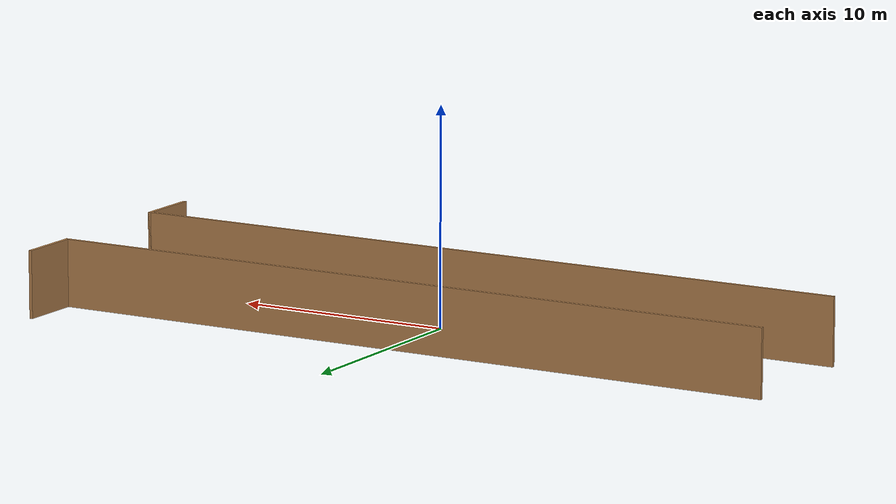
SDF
<?xml version='1.0'?>
<sdf version='1.6'>
  <model name='turtlebot3_square'>
    <pose frame=''>0 0 0 0 -0 0</pose>
    <link name='Wall_10'>
      <collision name='Wall_10_Collision'>
        <geometry>
          <box>
            <size>3 0.15 3.1</size>
          </box>
        </geometry>
        <pose frame=''>0 0 1.25 0 -0 0</pose>
      </collision>
      <visual name='Wall_10_Visual'>
        <pose frame=''>0 0 1.25 0 -0 0</pose>
        <geometry>
          <box>
            <size>3 0.15 3.1</size>
          </box>
        </geometry>
        <material>
          <script>
            <uri>file://media/materials/scripts/gazebo.material</uri>
            <name>Gazebo/Wood</name>
          </script>
          <ambient>1 1 1 1</ambient>
        </material>
      </visual>
      <pose frame=''>17.3988 4.84431 0 0 -0 1.5708</pose>
    </link>
    <link name='Wall_18'>
      <collision name='Wall_18_Collision'>
        <geometry>
          <box>
            <size>35 0.15 3.1</size>
          </box>
        </geometry>
        <pose frame=''>0 0 1.25 0 -0 0</pose>
      </collision>
      <visual name='Wall_18_Visual'>
        <pose frame=''>0 0 1.25 0 -0 0</pose>
        <geometry>
          <box>
            <size>35 0.15 3.1</size>
          </box>
        </geometry>
        <material>
          <script>
            <uri>file://media/materials/scripts/gazebo.material</uri>
            <name>Gazebo/Wood</name>
          </script>
          <ambient>1 1 1 1</ambient>
        </material>
      </visual>
      <pose frame=''>0.026235 -3.41931 0 0 -0 0</pose>
    </link>
    <link name='Wall_19'>
      <collision name='Wall_19_Collision'>
        <geometry>
          <box>
            <size>3 0.15 3.1</size>
          </box>
        </geometry>
        <pose frame=''>0 0 1.25 0 -0 0</pose>
      </collision>
      <visual name='Wall_19_Visual'>
        <pose frame=''>0 0 1.25 0 -0 0</pose>
        <geometry>
          <box>
            <size>3 0.15 3.1</size>
          </box>
        </geometry>
        <material>
          <script>
            <uri>file://media/materials/scripts/gazebo.material</uri>
            <name>Gazebo/Wood</name>
          </script>
          <ambient>1 1 1 1</ambient>
        </material>
      </visual>
      <pose frame=''>17.4512 -4.84431 0 0 -0 -1.5708</pose>
    </link>
    <link name='Wall_9'>
      <collision name='Wall_9_Collision'>
        <geometry>
          <box>
            <size>35 0.15 3.1</size>
          </box>
        </geometry>
        <pose frame=''>0 0 1.25 0 -0 0</pose>
      </collision>
      <visual name='Wall_9_Visual'>
        <pose frame=''>0 0 1.25 0 -0 0</pose>
        <geometry>
          <box>
            <size>35 0.15 3.1</size>
          </box>
        </geometry>
        <material>
          <script>
            <uri>file://media/materials/scripts/gazebo.material</uri>
            <name>Gazebo/Wood</name>
          </script>
          <ambient>1 1 1 1</ambient>
        </material>
      </visual>
      <pose frame=''>-0.026235 3.41931 0 0 -0 0</pose>
    </link>
    <static>1</static>
  </model>
</sdf>
